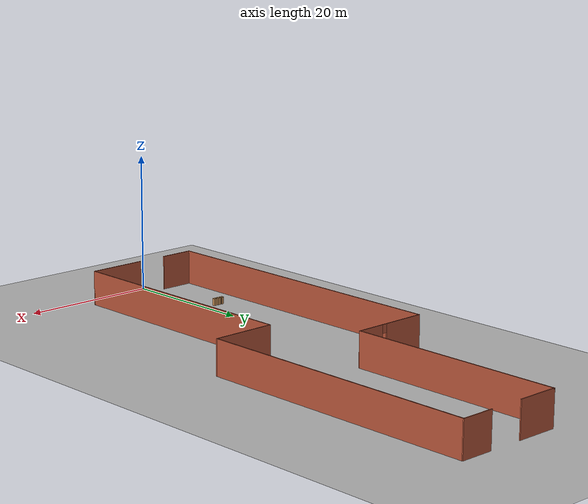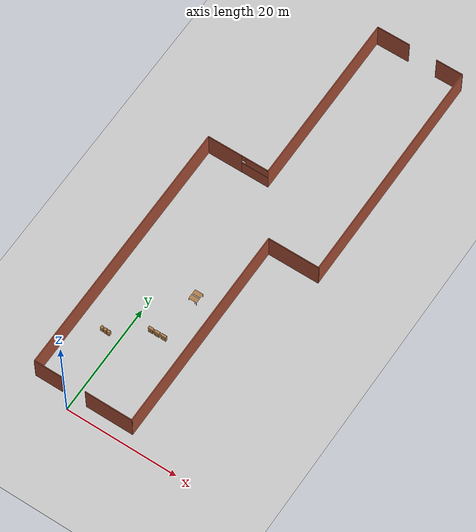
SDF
<sdf version="1.6">
 <world name="default">
  <light name="sun" type="directional">
   <pose>0 0 10 0 -0 0</pose>
   <diffuse>0.8 0.8 0.8 1</diffuse>
   <specular>0.2 0.2 0.2 1</specular>
   <attenuation>
    <range>1000</range>
    <constant>0.9</constant>
    <linear>0.01</linear>
    <quadratic>0.001</quadratic>
   </attenuation>
   <direction>-0.5 0.1 -0.9</direction>
   <spot><inner_angle>0</inner_angle><outer_angle>0</outer_angle><falloff>0</falloff></spot>
  </light>
  <model name="ground_plane">
   <static>1</static>
   <link name="link">
    <collision name="collision">
     <geometry><plane><normal>0 0 1</normal><size>100 100</size></plane></geometry>
     <surface><friction><ode><mu>100</mu><mu2>50</mu2></ode></friction></surface>
    </collision>
    <visual name="visual">
     <cast_shadows>0</cast_shadows>
     <geometry><plane><normal>0 0 1</normal><size>100 100</size></plane></geometry>
     <material>
      <script><uri>file://media/materials/scripts/gazebo.material</uri><name>Gazebo/Grey</name></script>
     </material>
    </visual>
   </link>
  </model>
  <gravity>0 0 -9.8</gravity>
  <magnetic_field>6e-06 2.3e-05 -4.2e-05</magnetic_field>
  <atmosphere type="adiabatic"/>
  <physics name="default_physics" default="0" type="ode">
   <max_step_size>0.001</max_step_size>
   <real_time_factor>1</real_time_factor>
   <real_time_update_rate>1000</real_time_update_rate>
  </physics>
  <scene><ambient>0.4 0.4 0.4 1</ambient><background>0.7 0.7 0.7 1</background><shadows>1</shadows></scene>
  <spherical_coordinates>
   <surface_model>EARTH_WGS84</surface_model>
   <latitude_deg>0</latitude_deg>
   <longitude_deg>0</longitude_deg>
   <elevation>0</elevation>
   <heading_deg>0</heading_deg>
  </spherical_coordinates>
  <model name="Corridor_mine">
   <pose>6.2941 41.0937 0 0 -0 1.57079</pose>
   <link name="Wall_1">
    <collision name="Wall_1_Collision">
     <geometry><box><size>5 0.15 5</size></box></geometry>
     <pose>0 0 2.5 0 -0 0</pose>
    </collision>
    <visual name="Wall_1_Visual">
     <pose>0 0 2.5 0 -0 0</pose>
     <geometry><box><size>5 0.15 5</size></box></geometry>
     <material>
      <script><uri>file://media/materials/scripts/gazebo.material</uri><name>Gazebo/Bricks</name></script>
      <ambient>1 1 1 1</ambient>
     </material>
     <meta><layer>0</layer></meta>
    </visual>
    <pose>-38.952 10.9811 0 0 -0 1.5708</pose>
   </link>
   <link name="Wall_10">
    <collision name="Wall_10_Collision">
     <geometry><box><size>41.2799 0.15 5</size></box></geometry>
     <pose>0 0 2.5 0 -0 0</pose>
    </collision>
    <visual name="Wall_10_Visual">
     <pose>0 0 2.5 0 -0 0</pose>
     <geometry><box><size>41.2799 0.15 5</size></box></geometry>
     <material>
      <script><uri>file://media/materials/scripts/gazebo.material</uri><name>Gazebo/Bricks</name></script>
      <ambient>1 1 1 1</ambient>
     </material>
     <meta><layer>0</layer></meta>
    </visual>
    <pose>18.417 -13.4059 0 0 -0 0</pose>
   </link>
   <link name="Wall_11">
    <collision name="Wall_11_Collision">
     <geometry><box><size>4.82028 0.15 5</size></box></geometry>
     <pose>0 0 2.5 0 -0 0</pose>
    </collision>
    <visual name="Wall_11_Visual">
     <pose>0 0 2.5 0 -0 0</pose>
     <geometry><box><size>4.82028 0.15 5</size></box></geometry>
     <material>
      <script><uri>file://media/materials/scripts/gazebo.material</uri><name>Gazebo/Bricks</name></script>
      <ambient>1 1 1 1</ambient>
     </material>
     <meta><layer>0</layer></meta>
    </visual>
    <pose>38.982 -11.0709 0 0 -0 1.5708</pose>
   </link>
   <link name="Wall_2">
    <collision name="Wall_2_Collision">
     <geometry><box><size>46.75 0.15 5</size></box></geometry>
     <pose>0 0 2.5 0 -0 0</pose>
    </collision>
    <visual name="Wall_2_Visual">
     <pose>0 0 2.5 0 -0 0</pose>
     <geometry><box><size>46.75 0.15 5</size></box></geometry>
     <material>
      <script><uri>file://media/materials/scripts/gazebo.material</uri><name>Gazebo/Bricks</name></script>
      <ambient>1 1 1 1</ambient>
     </material>
     <meta><layer>0</layer></meta>
    </visual>
    <pose>-15.652 13.4061 0 0 -0 0</pose>
   </link>
   <link name="Wall_3">
    <pose>7.648 7.85607 0 0 -0 -1.5708</pose>
    <visual name="Wall_3_Visual_0">
     <pose>-2.48262 0 2.5 0 -0 0</pose>
     <geometry><box><size>6.28477 0.15 5</size></box></geometry>
     <material>
      <script><uri>file://media/materials/scripts/gazebo.material</uri><name>Gazebo/Bricks</name></script>
      <ambient>1 1 1 1</ambient>
     </material>
     <meta><layer>0</layer></meta>
    </visual>
    <collision name="Wall_3_Collision_0">
     <geometry><box><size>6.28477 0.15 5</size></box></geometry>
     <pose>-2.48262 0 2.5 0 -0 0</pose>
    </collision>
    <visual name="Wall_3_Visual_1">
     <pose>3.14238 0 1.5 0 -0 0</pose>
     <geometry><box><size>4.96523 0.15 3</size></box></geometry>
     <material>
      <script><uri>file://media/materials/scripts/gazebo.material</uri><name>Gazebo/Bricks</name></script>
      <ambient>1 1 1 1</ambient>
     </material>
     <meta><layer>0</layer></meta>
    </visual>
    <collision name="Wall_3_Collision_1">
     <geometry><box><size>4.96523 0.15 3</size></box></geometry>
     <pose>3.14238 0 1.5 0 -0 0</pose>
    </collision>
    <visual name="Wall_3_Visual_2">
     <pose>3.54238 0 4 0 -0 0</pose>
     <geometry><box><size>4.16523 0.15 2</size></box></geometry>
     <material>
      <script><uri>file://media/materials/scripts/gazebo.material</uri><name>Gazebo/Bricks</name></script>
      <ambient>1 1 1 1</ambient>
     </material>
     <meta><layer>0</layer></meta>
    </visual>
    <collision name="Wall_3_Collision_2">
     <geometry><box><size>4.16523 0.15 2</size></box></geometry>
     <pose>3.54238 0 4 0 -0 0</pose>
    </collision>
    <visual name="Wall_3_Visual_3">
     <pose>1.05977 0 4.4 0 -0 0</pose>
     <geometry><box><size>0.8 0.15 1.2</size></box></geometry>
     <material>
      <script><uri>file://media/materials/scripts/gazebo.material</uri><name>Gazebo/Bricks</name></script>
      <ambient>1 1 1 1</ambient>
     </material>
     <meta><layer>0</layer></meta>
    </visual>
    <collision name="Wall_3_Collision_3">
     <geometry><box><size>0.8 0.15 1.2</size></box></geometry>
     <pose>1.05977 0 4.4 0 -0 0</pose>
    </collision>
   </link>
   <link name="Wall_4">
    <collision name="Wall_4_Collision">
     <geometry><box><size>31.5 0.15 5</size></box></geometry>
     <pose>0 0 2.5 0 -0 0</pose>
    </collision>
    <visual name="Wall_4_Visual">
     <pose>0 0 2.5 0 -0 0</pose>
     <geometry><box><size>31.5 0.15 5</size></box></geometry>
     <material>
      <script><uri>file://media/materials/scripts/gazebo.material</uri><name>Gazebo/Bricks</name></script>
      <ambient>1 1 1 1</ambient>
     </material>
     <meta><layer>0</layer></meta>
    </visual>
    <pose>23.323 2.30607 0 0 -0 0</pose>
   </link>
   <link name="Wall_5">
    <collision name="Wall_5_Collision">
     <geometry><box><size>6 0.15 5</size></box></geometry>
     <pose>0 0 2.5 0 -0 0</pose>
    </collision>
    <visual name="Wall_5_Visual">
     <pose>0 0 2.5 0 -0 0</pose>
     <geometry><box><size>6 0.15 5</size></box></geometry>
     <material>
      <script><uri>file://media/materials/scripts/gazebo.material</uri><name>Gazebo/Bricks</name></script>
      <ambient>1 1 1 1</ambient>
     </material>
     <meta><layer>0</layer></meta>
    </visual>
    <pose>38.998 -0.618931 0 0 -0 -1.5708</pose>
   </link>
   <link name="Wall_7">
    <collision name="Wall_7_Collision">
     <geometry><box><size>8.5 0.15 5</size></box></geometry>
     <pose>0 0 2.5 0 -0 0</pose>
    </collision>
    <visual name="Wall_7_Visual">
     <pose>0 0 2.5 0 -0 0</pose>
     <geometry><box><size>8.5 0.15 5</size></box></geometry>
     <material>
      <script><uri>file://media/materials/scripts/gazebo.material</uri><name>Gazebo/Bricks</name></script>
      <ambient>1 1 1 1</ambient>
     </material>
     <meta><layer>0</layer></meta>
    </visual>
    <pose>-38.998 -0.130931 0 0 -0 -1.5708</pose>
   </link>
   <link name="Wall_8">
    <collision name="Wall_8_Collision">
     <geometry><box><size>37 0.15 5</size></box></geometry>
     <pose>0 0 2.5 0 -0 0</pose>
    </collision>
    <visual name="Wall_8_Visual">
     <pose>0 0 2.5 0 -0 0</pose>
     <geometry><box><size>37 0.15 5</size></box></geometry>
     <material>
      <script><uri>file://media/materials/scripts/gazebo.material</uri><name>Gazebo/Bricks</name></script>
      <ambient>1 1 1 1</ambient>
     </material>
     <meta><layer>0</layer></meta>
    </visual>
    <pose>-20.573 -4.30593 0 0 -0 0</pose>
   </link>
   <link name="Wall_9">
    <collision name="Wall_9_Collision">
     <geometry><box><size>9.25 0.15 5</size></box></geometry>
     <pose>0 0 2.5 0 -0 0</pose>
    </collision>
    <visual name="Wall_9_Visual">
     <pose>0 0 2.5 0 -0 0</pose>
     <geometry><box><size>9.25 0.15 5</size></box></geometry>
     <material>
      <script><uri>file://media/materials/scripts/gazebo.material</uri><name>Gazebo/Bricks</name></script>
      <ambient>1 1 1 1</ambient>
     </material>
     <meta><layer>0</layer></meta>
    </visual>
    <pose>-2.148 -8.85593 0 0 -0 -1.5708</pose>
   </link>
   <static>1</static>
  </model>
  <model name="table">
   <static>1</static>
   <link name="link">
    <collision name="surface">
     <pose>0 0 1 0 -0 0</pose>
     <geometry><box><size>1.5 0.8 0.03</size></box></geometry>
     <surface><friction><ode><mu>0.6</mu><mu2>0.6</mu2></ode></friction></surface>
    </collision>
    <visual name="visual1">
     <pose>0 0 1 0 -0 0</pose>
     <geometry><box><size>1.5 0.8 0.03</size></box></geometry>
     <material>
      <script><uri>file://media/materials/scripts/gazebo.material</uri><name>Gazebo/Wood</name></script>
     </material>
    </visual>
    <collision name="front_left_leg">
     <pose>0.68 0.38 0.5 0 -0 0</pose>
     <geometry><cylinder><radius>0.02</radius><length>1</length></cylinder></geometry>
    </collision>
    <visual name="front_left_leg">
     <pose>0.68 0.38 0.5 0 -0 0</pose>
     <geometry><cylinder><radius>0.02</radius><length>1</length></cylinder></geometry>
     <material>
      <script><uri>file://media/materials/scripts/gazebo.material</uri><name>Gazebo/Grey</name></script>
     </material>
    </visual>
    <collision name="front_right_leg">
     <pose>0.68 -0.38 0.5 0 -0 0</pose>
     <geometry><cylinder><radius>0.02</radius><length>1</length></cylinder></geometry>
    </collision>
    <visual name="front_right_leg">
     <pose>0.68 -0.38 0.5 0 -0 0</pose>
     <geometry><cylinder><radius>0.02</radius><length>1</length></cylinder></geometry>
     <material>
      <script><uri>file://media/materials/scripts/gazebo.material</uri><name>Gazebo/Grey</name></script>
     </material>
    </visual>
    <collision name="back_right_leg">
     <pose>-0.68 -0.38 0.5 0 -0 0</pose>
     <geometry><cylinder><radius>0.02</radius><length>1</length></cylinder></geometry>
    </collision>
    <visual name="back_right_leg">
     <pose>-0.68 -0.38 0.5 0 -0 0</pose>
     <geometry><cylinder><radius>0.02</radius><length>1</length></cylinder></geometry>
     <material>
      <script><uri>file://media/materials/scripts/gazebo.material</uri><name>Gazebo/Grey</name></script>
     </material>
    </visual>
    <collision name="back_left_leg">
     <pose>-0.68 0.38 0.5 0 -0 0</pose>
     <geometry><cylinder><radius>0.02</radius><length>1</length></cylinder></geometry>
    </collision>
    <visual name="back_left_leg">
     <pose>-0.68 0.38 0.5 0 -0 0</pose>
     <geometry><cylinder><radius>0.02</radius><length>1</length></cylinder></geometry>
     <material>
      <script><uri>file://media/materials/scripts/gazebo.material</uri><name>Gazebo/Grey</name></script>
     </material>
    </visual>
   </link>
   <pose>5.72407 25.7196 0 0 -0 0</pose>
  </model>
  <model name="beer">
   <link name="link">
    <pose>0 0 0.115 0 -0 0</pose>
    <inertial>
     <mass>0.39</mass>
     <inertia><ixx>0.00058</ixx><ixy>0</ixy><ixz>0</ixz><iyy>0.00058</iyy><iyz>0</iyz><izz>0.00019</izz></inertia>
    </inertial>
    <collision name="collision">
     <geometry><cylinder><radius>0.055</radius><length>0.23</length></cylinder></geometry>
    </collision>
    <visual name="visual">
     <geometry><cylinder><radius>0.055</radius><length>0.23</length></cylinder></geometry>
     <material>
      <script>
       <uri>model://beer/materials/scripts</uri>
       <uri>model://beer/materials/textures</uri>
       <name>Beer/Diffuse</name>
      </script>
     </material>
    </visual>
   </link>
   <pose>6.01933 25.511 -7e-06 -1e-06 -0 -0.000124</pose>
  </model>
  <model name="bookshelf">
   <static>1</static>
   <link name="link">
    <inertial><mass>1</mass></inertial>
    <collision name="back">
     <pose>0 0.005 0.6 0 -0 0</pose>
     <geometry><box><size>0.9 0.01 1.2</size></box></geometry>
    </collision>
    <visual name="visual1">
     <pose>0 0.005 0.6 0 -0 0</pose>
     <geometry><box><size>0.9 0.01 1.2</size></box></geometry>
     <material>
      <script><uri>file://media/materials/scripts/gazebo.material</uri><name>Gazebo/Wood</name></script>
     </material>
    </visual>
    <collision name="left_side">
     <pose>0.45 -0.195 0.6 0 -0 0</pose>
     <geometry><box><size>0.02 0.4 1.2</size></box></geometry>
    </collision>
    <visual name="visual2">
     <pose>0.45 -0.195 0.6 0 -0 0</pose>
     <geometry><box><size>0.02 0.4 1.2</size></box></geometry>
     <material>
      <script><uri>file://media/materials/scripts/gazebo.material</uri><name>Gazebo/Wood</name></script>
     </material>
    </visual>
    <collision name="right_side">
     <pose>-0.45 -0.195 0.6 0 -0 0</pose>
     <geometry><box><size>0.02 0.4 1.2</size></box></geometry>
    </collision>
    <visual name="visual3">
     <pose>-0.45 -0.195 0.6 0 -0 0</pose>
     <geometry><box><size>0.02 0.4 1.2</size></box></geometry>
     <material>
      <script><uri>file://media/materials/scripts/gazebo.material</uri><name>Gazebo/Wood</name></script>
     </material>
    </visual>
    <collision name="bottom">
     <pose>0 -0.195 0.03 0 -0 0</pose>
     <geometry><box><size>0.88 0.4 0.06</size></box></geometry>
    </collision>
    <visual name="visual4">
     <pose>0 -0.195 0.03 0 -0 0</pose>
     <geometry><box><size>0.88 0.4 0.06</size></box></geometry>
     <material>
      <script><uri>file://media/materials/scripts/gazebo.material</uri><name>Gazebo/Wood</name></script>
     </material>
    </visual>
    <collision name="top">
     <pose>0 -0.195 1.19 0 -0 0</pose>
     <geometry><box><size>0.88 0.4 0.02</size></box></geometry>
    </collision>
    <visual name="visual5">
     <pose>0 -0.195 1.19 0 -0 0</pose>
     <geometry><box><size>0.88 0.4 0.02</size></box></geometry>
     <material>
      <script><uri>file://media/materials/scripts/gazebo.material</uri><name>Gazebo/Wood</name></script>
     </material>
    </visual>
    <collision name="low_shelf">
     <pose>0 -0.195 0.43 0 -0 0</pose>
     <geometry><box><size>0.88 0.4 0.02</size></box></geometry>
    </collision>
    <visual name="visual6">
     <pose>0 -0.195 0.43 0 -0 0</pose>
     <geometry><box><size>0.88 0.4 0.02</size></box></geometry>
     <material>
      <script><uri>file://media/materials/scripts/gazebo.material</uri><name>Gazebo/Wood</name></script>
     </material>
    </visual>
    <collision name="high_shelf">
     <pose>0 -0.195 0.8 0 -0 0</pose>
     <geometry><box><size>0.88 0.4 0.02</size></box></geometry>
    </collision>
    <visual name="visual7">
     <pose>0 -0.195 0.8 0 -0 0</pose>
     <geometry><box><size>0.88 0.4 0.02</size></box></geometry>
     <material>
      <script><uri>file://media/materials/scripts/gazebo.material</uri><name>Gazebo/Wood</name></script>
     </material>
    </visual>
   </link>
   <pose>3.18803 18.0388 0 0 -0 0</pose>
  </model>
  <model name="bookshelf_0">
   <static>1</static>
   <link name="link">
    <inertial><mass>1</mass></inertial>
    <collision name="back">
     <pose>0 0.005 0.6 0 -0 0</pose>
     <geometry><box><size>0.9 0.01 1.2</size></box></geometry>
    </collision>
    <visual name="visual1">
     <pose>0 0.005 0.6 0 -0 0</pose>
     <geometry><box><size>0.9 0.01 1.2</size></box></geometry>
     <material>
      <script><uri>file://media/materials/scripts/gazebo.material</uri><name>Gazebo/Wood</name></script>
     </material>
    </visual>
    <collision name="left_side">
     <pose>0.45 -0.195 0.6 0 -0 0</pose>
     <geometry><box><size>0.02 0.4 1.2</size></box></geometry>
    </collision>
    <visual name="visual2">
     <pose>0.45 -0.195 0.6 0 -0 0</pose>
     <geometry><box><size>0.02 0.4 1.2</size></box></geometry>
     <material>
      <script><uri>file://media/materials/scripts/gazebo.material</uri><name>Gazebo/Wood</name></script>
     </material>
    </visual>
    <collision name="right_side">
     <pose>-0.45 -0.195 0.6 0 -0 0</pose>
     <geometry><box><size>0.02 0.4 1.2</size></box></geometry>
    </collision>
    <visual name="visual3">
     <pose>-0.45 -0.195 0.6 0 -0 0</pose>
     <geometry><box><size>0.02 0.4 1.2</size></box></geometry>
     <material>
      <script><uri>file://media/materials/scripts/gazebo.material</uri><name>Gazebo/Wood</name></script>
     </material>
    </visual>
    <collision name="bottom">
     <pose>0 -0.195 0.03 0 -0 0</pose>
     <geometry><box><size>0.88 0.4 0.06</size></box></geometry>
    </collision>
    <visual name="visual4">
     <pose>0 -0.195 0.03 0 -0 0</pose>
     <geometry><box><size>0.88 0.4 0.06</size></box></geometry>
     <material>
      <script><uri>file://media/materials/scripts/gazebo.material</uri><name>Gazebo/Wood</name></script>
     </material>
    </visual>
    <collision name="top">
     <pose>0 -0.195 1.19 0 -0 0</pose>
     <geometry><box><size>0.88 0.4 0.02</size></box></geometry>
    </collision>
    <visual name="visual5">
     <pose>0 -0.195 1.19 0 -0 0</pose>
     <geometry><box><size>0.88 0.4 0.02</size></box></geometry>
     <material>
      <script><uri>file://media/materials/scripts/gazebo.material</uri><name>Gazebo/Wood</name></script>
     </material>
    </visual>
    <collision name="low_shelf">
     <pose>0 -0.195 0.43 0 -0 0</pose>
     <geometry><box><size>0.88 0.4 0.02</size></box></geometry>
    </collision>
    <visual name="visual6">
     <pose>0 -0.195 0.43 0 -0 0</pose>
     <geometry><box><size>0.88 0.4 0.02</size></box></geometry>
     <material>
      <script><uri>file://media/materials/scripts/gazebo.material</uri><name>Gazebo/Wood</name></script>
     </material>
    </visual>
    <collision name="high_shelf">
     <pose>0 -0.195 0.8 0 -0 0</pose>
     <geometry><box><size>0.88 0.4 0.02</size></box></geometry>
    </collision>
    <visual name="visual7">
     <pose>0 -0.195 0.8 0 -0 0</pose>
     <geometry><box><size>0.88 0.4 0.02</size></box></geometry>
     <material>
      <script><uri>file://media/materials/scripts/gazebo.material</uri><name>Gazebo/Wood</name></script>
     </material>
    </visual>
   </link>
   <pose>4.3277 18.0376 0 0 -0 0</pose>
  </model>
  <model name="bookshelf_1">
   <static>1</static>
   <link name="link">
    <inertial><mass>1</mass></inertial>
    <collision name="back">
     <pose>0 0.005 0.6 0 -0 0</pose>
     <geometry><box><size>0.9 0.01 1.2</size></box></geometry>
    </collision>
    <visual name="visual1">
     <pose>0 0.005 0.6 0 -0 0</pose>
     <geometry><box><size>0.9 0.01 1.2</size></box></geometry>
     <material>
      <script><uri>file://media/materials/scripts/gazebo.material</uri><name>Gazebo/Wood</name></script>
     </material>
    </visual>
    <collision name="left_side">
     <pose>0.45 -0.195 0.6 0 -0 0</pose>
     <geometry><box><size>0.02 0.4 1.2</size></box></geometry>
    </collision>
    <visual name="visual2">
     <pose>0.45 -0.195 0.6 0 -0 0</pose>
     <geometry><box><size>0.02 0.4 1.2</size></box></geometry>
     <material>
      <script><uri>file://media/materials/scripts/gazebo.material</uri><name>Gazebo/Wood</name></script>
     </material>
    </visual>
    <collision name="right_side">
     <pose>-0.45 -0.195 0.6 0 -0 0</pose>
     <geometry><box><size>0.02 0.4 1.2</size></box></geometry>
    </collision>
    <visual name="visual3">
     <pose>-0.45 -0.195 0.6 0 -0 0</pose>
     <geometry><box><size>0.02 0.4 1.2</size></box></geometry>
     <material>
      <script><uri>file://media/materials/scripts/gazebo.material</uri><name>Gazebo/Wood</name></script>
     </material>
    </visual>
    <collision name="bottom">
     <pose>0 -0.195 0.03 0 -0 0</pose>
     <geometry><box><size>0.88 0.4 0.06</size></box></geometry>
    </collision>
    <visual name="visual4">
     <pose>0 -0.195 0.03 0 -0 0</pose>
     <geometry><box><size>0.88 0.4 0.06</size></box></geometry>
     <material>
      <script><uri>file://media/materials/scripts/gazebo.material</uri><name>Gazebo/Wood</name></script>
     </material>
    </visual>
    <collision name="top">
     <pose>0 -0.195 1.19 0 -0 0</pose>
     <geometry><box><size>0.88 0.4 0.02</size></box></geometry>
    </collision>
    <visual name="visual5">
     <pose>0 -0.195 1.19 0 -0 0</pose>
     <geometry><box><size>0.88 0.4 0.02</size></box></geometry>
     <material>
      <script><uri>file://media/materials/scripts/gazebo.material</uri><name>Gazebo/Wood</name></script>
     </material>
    </visual>
    <collision name="low_shelf">
     <pose>0 -0.195 0.43 0 -0 0</pose>
     <geometry><box><size>0.88 0.4 0.02</size></box></geometry>
    </collision>
    <visual name="visual6">
     <pose>0 -0.195 0.43 0 -0 0</pose>
     <geometry><box><size>0.88 0.4 0.02</size></box></geometry>
     <material>
      <script><uri>file://media/materials/scripts/gazebo.material</uri><name>Gazebo/Wood</name></script>
     </material>
    </visual>
    <collision name="high_shelf">
     <pose>0 -0.195 0.8 0 -0 0</pose>
     <geometry><box><size>0.88 0.4 0.02</size></box></geometry>
    </collision>
    <visual name="visual7">
     <pose>0 -0.195 0.8 0 -0 0</pose>
     <geometry><box><size>0.88 0.4 0.02</size></box></geometry>
     <material>
      <script><uri>file://media/materials/scripts/gazebo.material</uri><name>Gazebo/Wood</name></script>
     </material>
    </visual>
   </link>
   <pose>5.50422 18.0628 0 0 -0 0</pose>
  </model>
  <model name="cabinet">
   <static>1</static>
   <link name="cabinet_bottom_plate">
    <inertial>
     <pose>0 0 -1 0 -0 0</pose>
     <inertia><ixx>2.05</ixx><ixy>0</ixy><ixz>0</ixz><iyy>2.05</iyy><iyz>0</iyz><izz>2.05</izz></inertia>
     <mass>25</mass>
    </inertial>
    <collision name="cabinet_bottom_plate_geom">
     <pose>0 0 0.01 0 -0 0</pose>
     <geometry><box><size>0.45 0.45 0.02</size></box></geometry>
    </collision>
    <visual name="cabinet_bottom_plate_geom_visual">
     <pose>0 0 0.01 0 -0 0</pose>
     <geometry><box><size>0.45 0.45 0.02</size></box></geometry>
     <material>
      <script><uri>file://media/materials/scripts/gazebo.material</uri><name>Gazebo/Wood</name></script>
     </material>
    </visual>
    <collision name="cabinet_bottom_plate_geom_cabinet_back_plate">
     <pose>0.235 0 0.51 0 -0 0</pose>
     <geometry><box><size>0.02 0.45 1.02</size></box></geometry>
    </collision>
    <visual name="cabinet_bottom_plate_geom_cabinet_back_plate_visual">
     <pose>0.235 0 0.51 0 -0 0</pose>
     <geometry><box><size>0.02 0.45 1.02</size></box></geometry>
     <material>
      <script><uri>file://media/materials/scripts/gazebo.material</uri><name>Gazebo/Wood</name></script>
     </material>
    </visual>
    <collision name="cabinet_bottom_plate_geom_cabinet_left_plate">
     <pose>0 0.235 0.51 0 -0 0</pose>
     <geometry><box><size>0.45 0.02 1.02</size></box></geometry>
    </collision>
    <visual name="cabinet_bottom_plate_geom_cabinet_left_plate_visual">
     <pose>0 0.235 0.51 0 -0 0</pose>
     <geometry><box><size>0.45 0.02 1.02</size></box></geometry>
     <material>
      <script><uri>file://media/materials/scripts/gazebo.material</uri><name>Gazebo/Wood</name></script>
     </material>
    </visual>
    <collision name="cabinet_bottom_plate_geom_cabinet_middle_plate">
     <pose>0 0 0.51 0 -0 0</pose>
     <geometry><box><size>0.45 0.45 0.02</size></box></geometry>
    </collision>
    <visual name="cabinet_bottom_plate_geom_cabinet_middle_plate_visual">
     <pose>0 0 0.51 0 -0 0</pose>
     <geometry><box><size>0.45 0.45 0.02</size></box></geometry>
     <material>
      <script><uri>file://media/materials/scripts/gazebo.material</uri><name>Gazebo/Wood</name></script>
     </material>
    </visual>
    <collision name="cabinet_bottom_plate_geom_cabinet_right_plate">
     <pose>0 -0.235 0.51 0 -0 0</pose>
     <geometry><box><size>0.45 0.02 1.02</size></box></geometry>
    </collision>
    <visual name="cabinet_bottom_plate_geom_cabinet_right_plate_visual">
     <pose>0 -0.235 0.51 0 -0 0</pose>
     <geometry><box><size>0.45 0.02 1.02</size></box></geometry>
     <material>
      <script><uri>file://media/materials/scripts/gazebo.material</uri><name>Gazebo/Wood</name></script>
     </material>
    </visual>
    <collision name="cabinet_bottom_plate_geom_cabinet_top_plate">
     <pose>0 0 1.01 0 -0 0</pose>
     <geometry><box><size>0.45 0.45 0.02</size></box></geometry>
    </collision>
    <visual name="cabinet_bottom_plate_geom_cabinet_top_plate_visual">
     <pose>0 0 1.01 0 -0 0</pose>
     <geometry><box><size>0.45 0.45 0.02</size></box></geometry>
     <material>
      <script><uri>file://media/materials/scripts/gazebo.material</uri><name>Gazebo/Wood</name></script>
     </material>
    </visual>
   </link>
   <pose>-1.90521 13.8934 0 0 -0 1.5708</pose>
  </model>
  <model name="cabinet_clone">
   <static>1</static>
   <link name="cabinet_bottom_plate">
    <inertial>
     <pose>0 0 -1 0 -0 0</pose>
     <inertia><ixx>2.05</ixx><ixy>0</ixy><ixz>0</ixz><iyy>2.05</iyy><iyz>0</iyz><izz>2.05</izz></inertia>
     <mass>25</mass>
    </inertial>
    <collision name="cabinet_bottom_plate_geom">
     <pose>0 0 0.01 0 -0 0</pose>
     <geometry><box><size>0.45 0.45 0.02</size></box></geometry>
    </collision>
    <visual name="cabinet_bottom_plate_geom_visual">
     <pose>0 0 0.01 0 -0 0</pose>
     <geometry><box><size>0.45 0.45 0.02</size></box></geometry>
     <material>
      <script><uri>file://media/materials/scripts/gazebo.material</uri><name>Gazebo/Wood</name></script>
     </material>
    </visual>
    <collision name="cabinet_bottom_plate_geom_cabinet_back_plate">
     <pose>0.235 0 0.51 0 -0 0</pose>
     <geometry><box><size>0.02 0.45 1.02</size></box></geometry>
    </collision>
    <visual name="cabinet_bottom_plate_geom_cabinet_back_plate_visual">
     <pose>0.235 0 0.51 0 -0 0</pose>
     <geometry><box><size>0.02 0.45 1.02</size></box></geometry>
     <material>
      <script><uri>file://media/materials/scripts/gazebo.material</uri><name>Gazebo/Wood</name></script>
     </material>
    </visual>
    <collision name="cabinet_bottom_plate_geom_cabinet_left_plate">
     <pose>0 0.235 0.51 0 -0 0</pose>
     <geometry><box><size>0.45 0.02 1.02</size></box></geometry>
    </collision>
    <visual name="cabinet_bottom_plate_geom_cabinet_left_plate_visual">
     <pose>0 0.235 0.51 0 -0 0</pose>
     <geometry><box><size>0.45 0.02 1.02</size></box></geometry>
     <material>
      <script><uri>file://media/materials/scripts/gazebo.material</uri><name>Gazebo/Wood</name></script>
     </material>
    </visual>
    <collision name="cabinet_bottom_plate_geom_cabinet_middle_plate">
     <pose>0 0 0.51 0 -0 0</pose>
     <geometry><box><size>0.45 0.45 0.02</size></box></geometry>
    </collision>
    <visual name="cabinet_bottom_plate_geom_cabinet_middle_plate_visual">
     <pose>0 0 0.51 0 -0 0</pose>
     <geometry><box><size>0.45 0.45 0.02</size></box></geometry>
     <material>
      <script><uri>file://media/materials/scripts/gazebo.material</uri><name>Gazebo/Wood</name></script>
     </material>
    </visual>
    <collision name="cabinet_bottom_plate_geom_cabinet_right_plate">
     <pose>0 -0.235 0.51 0 -0 0</pose>
     <geometry><box><size>0.45 0.02 1.02</size></box></geometry>
    </collision>
    <visual name="cabinet_bottom_plate_geom_cabinet_right_plate_visual">
     <pose>0 -0.235 0.51 0 -0 0</pose>
     <geometry><box><size>0.45 0.02 1.02</size></box></geometry>
     <material>
      <script><uri>file://media/materials/scripts/gazebo.material</uri><name>Gazebo/Wood</name></script>
     </material>
    </visual>
    <collision name="cabinet_bottom_plate_geom_cabinet_top_plate">
     <pose>0 0 1.01 0 -0 0</pose>
     <geometry><box><size>0.45 0.45 0.02</size></box></geometry>
    </collision>
    <visual name="cabinet_bottom_plate_geom_cabinet_top_plate_visual">
     <pose>0 0 1.01 0 -0 0</pose>
     <geometry><box><size>0.45 0.45 0.02</size></box></geometry>
     <material>
      <script><uri>file://media/materials/scripts/gazebo.material</uri><name>Gazebo/Wood</name></script>
     </material>
    </visual>
   </link>
   <pose>-2.53906 13.9186 0 0 -0 1.5708</pose>
  </model>
  <model name="cabinet_clone_0">
   <static>1</static>
   <link name="cabinet_bottom_plate">
    <inertial>
     <pose>0 0 -1 0 -0 0</pose>
     <inertia><ixx>2.05</ixx><ixy>0</ixy><ixz>0</ixz><iyy>2.05</iyy><iyz>0</iyz><izz>2.05</izz></inertia>
     <mass>25</mass>
    </inertial>
    <collision name="cabinet_bottom_plate_geom">
     <pose>0 0 0.01 0 -0 0</pose>
     <geometry><box><size>0.45 0.45 0.02</size></box></geometry>
    </collision>
    <visual name="cabinet_bottom_plate_geom_visual">
     <pose>0 0 0.01 0 -0 0</pose>
     <geometry><box><size>0.45 0.45 0.02</size></box></geometry>
     <material>
      <script><uri>file://media/materials/scripts/gazebo.material</uri><name>Gazebo/Wood</name></script>
     </material>
    </visual>
    <collision name="cabinet_bottom_plate_geom_cabinet_back_plate">
     <pose>0.235 0 0.51 0 -0 0</pose>
     <geometry><box><size>0.02 0.45 1.02</size></box></geometry>
    </collision>
    <visual name="cabinet_bottom_plate_geom_cabinet_back_plate_visual">
     <pose>0.235 0 0.51 0 -0 0</pose>
     <geometry><box><size>0.02 0.45 1.02</size></box></geometry>
     <material>
      <script><uri>file://media/materials/scripts/gazebo.material</uri><name>Gazebo/Wood</name></script>
     </material>
    </visual>
    <collision name="cabinet_bottom_plate_geom_cabinet_left_plate">
     <pose>0 0.235 0.51 0 -0 0</pose>
     <geometry><box><size>0.45 0.02 1.02</size></box></geometry>
    </collision>
    <visual name="cabinet_bottom_plate_geom_cabinet_left_plate_visual">
     <pose>0 0.235 0.51 0 -0 0</pose>
     <geometry><box><size>0.45 0.02 1.02</size></box></geometry>
     <material>
      <script><uri>file://media/materials/scripts/gazebo.material</uri><name>Gazebo/Wood</name></script>
     </material>
    </visual>
    <collision name="cabinet_bottom_plate_geom_cabinet_middle_plate">
     <pose>0 0 0.51 0 -0 0</pose>
     <geometry><box><size>0.45 0.45 0.02</size></box></geometry>
    </collision>
    <visual name="cabinet_bottom_plate_geom_cabinet_middle_plate_visual">
     <pose>0 0 0.51 0 -0 0</pose>
     <geometry><box><size>0.45 0.45 0.02</size></box></geometry>
     <material>
      <script><uri>file://media/materials/scripts/gazebo.material</uri><name>Gazebo/Wood</name></script>
     </material>
    </visual>
    <collision name="cabinet_bottom_plate_geom_cabinet_right_plate">
     <pose>0 -0.235 0.51 0 -0 0</pose>
     <geometry><box><size>0.45 0.02 1.02</size></box></geometry>
    </collision>
    <visual name="cabinet_bottom_plate_geom_cabinet_right_plate_visual">
     <pose>0 -0.235 0.51 0 -0 0</pose>
     <geometry><box><size>0.45 0.02 1.02</size></box></geometry>
     <material>
      <script><uri>file://media/materials/scripts/gazebo.material</uri><name>Gazebo/Wood</name></script>
     </material>
    </visual>
    <collision name="cabinet_bottom_plate_geom_cabinet_top_plate">
     <pose>0 0 1.01 0 -0 0</pose>
     <geometry><box><size>0.45 0.45 0.02</size></box></geometry>
    </collision>
    <visual name="cabinet_bottom_plate_geom_cabinet_top_plate_visual">
     <pose>0 0 1.01 0 -0 0</pose>
     <geometry><box><size>0.45 0.45 0.02</size></box></geometry>
     <material>
      <script><uri>file://media/materials/scripts/gazebo.material</uri><name>Gazebo/Wood</name></script>
     </material>
    </visual>
   </link>
   <pose>-3.16458 13.9396 0 0 -0 1.5708</pose>
  </model>
  <model name="table_0">
   <static>1</static>
   <link name="link">
    <collision name="surface">
     <pose>0 0 1 0 -0 0</pose>
     <geometry><box><size>1.5 0.8 0.03</size></box></geometry>
     <surface><friction><ode><mu>0.6</mu><mu2>0.6</mu2></ode></friction></surface>
    </collision>
    <visual name="visual1">
     <pose>0 0 1 0 -0 0</pose>
     <geometry><box><size>1.5 0.8 0.03</size></box></geometry>
     <material>
      <script><uri>file://media/materials/scripts/gazebo.material</uri><name>Gazebo/Wood</name></script>
     </material>
    </visual>
    <collision name="front_left_leg">
     <pose>0.68 0.38 0.5 0 -0 0</pose>
     <geometry><cylinder><radius>0.02</radius><length>1</length></cylinder></geometry>
    </collision>
    <visual name="front_left_leg">
     <pose>0.68 0.38 0.5 0 -0 0</pose>
     <geometry><cylinder><radius>0.02</radius><length>1</length></cylinder></geometry>
     <material>
      <script><uri>file://media/materials/scripts/gazebo.material</uri><name>Gazebo/Grey</name></script>
     </material>
    </visual>
    <collision name="front_right_leg">
     <pose>0.68 -0.38 0.5 0 -0 0</pose>
     <geometry><cylinder><radius>0.02</radius><length>1</length></cylinder></geometry>
    </collision>
    <visual name="front_right_leg">
     <pose>0.68 -0.38 0.5 0 -0 0</pose>
     <geometry><cylinder><radius>0.02</radius><length>1</length></cylinder></geometry>
     <material>
      <script><uri>file://media/materials/scripts/gazebo.material</uri><name>Gazebo/Grey</name></script>
     </material>
    </visual>
    <collision name="back_right_leg">
     <pose>-0.68 -0.38 0.5 0 -0 0</pose>
     <geometry><cylinder><radius>0.02</radius><length>1</length></cylinder></geometry>
    </collision>
    <visual name="back_right_leg">
     <pose>-0.68 -0.38 0.5 0 -0 0</pose>
     <geometry><cylinder><radius>0.02</radius><length>1</length></cylinder></geometry>
     <material>
      <script><uri>file://media/materials/scripts/gazebo.material</uri><name>Gazebo/Grey</name></script>
     </material>
    </visual>
    <collision name="back_left_leg">
     <pose>-0.68 0.38 0.5 0 -0 0</pose>
     <geometry><cylinder><radius>0.02</radius><length>1</length></cylinder></geometry>
    </collision>
    <visual name="back_left_leg">
     <pose>-0.68 0.38 0.5 0 -0 0</pose>
     <geometry><cylinder><radius>0.02</radius><length>1</length></cylinder></geometry>
     <material>
      <script><uri>file://media/materials/scripts/gazebo.material</uri><name>Gazebo/Grey</name></script>
     </material>
    </visual>
   </link>
   <pose>5.72339 26.72 0 0 -0 0</pose>
  </model>
 </world>
</sdf>
